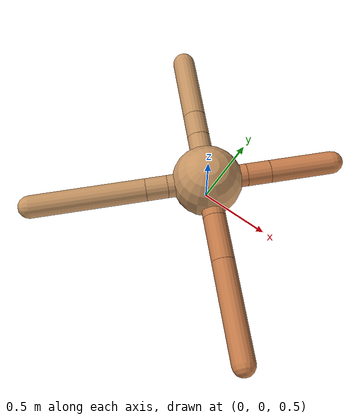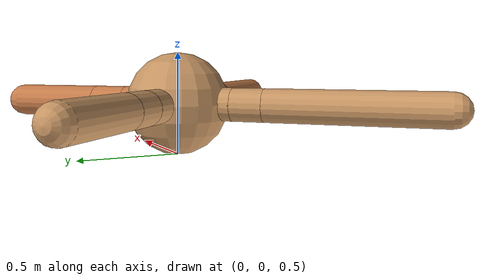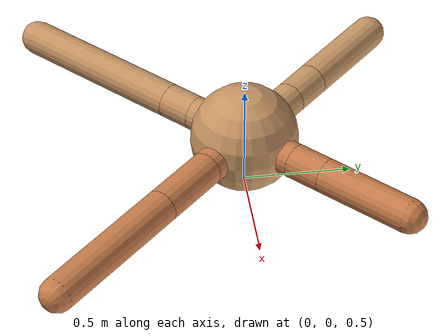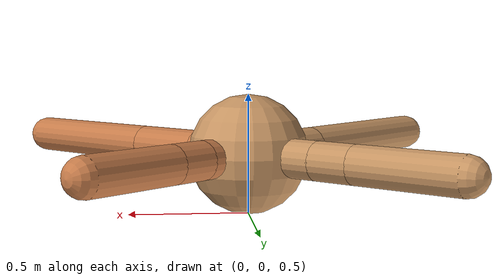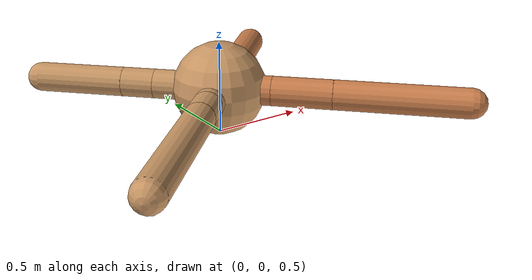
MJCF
<mujoco model="ant">
  <compiler angle="degree" coordinate="local" inertiafromgeom="true" />
  <option integrator="RK4" timestep="0.01" />
  <custom>
    <numeric data="0.0 0.0 0.55 1.0 0.0 0.0 0.0 0.0 1.0 0.0 -1.0 0.0 -1.0 0.0 1.0" name="init_qpos" />
  </custom>
  <default>
    <joint armature="1" damping="1" limited="true" />
    <geom conaffinity="0" condim="3" density="5.0" friction="1.5 0.1 0.1" margin="0.01" rgba="0.8 0.6 0.4 1" />
  </default>
  <worldbody>
    <body name="torso" pos="0 0 0.75">
      <geom name="torso_geom" pos="0 0 0" size="0.25" type="sphere" />

      <body name="front_left_leg" pos="0 0 0">
        <geom fromto="0.0 0.0 0.0 0.2 0.2 0.0" name="aux_1_geom" size="0.08" type="capsule" rgba=".8 .5 .3 1" />
        <body name="aux_1" pos="0.2 0.2 0.0">
          <joint axis="0 0 1" name="hip_1" pos="0.0 0.0 0.0" range="-40 40" type="hinge" />
          <geom fromto="0.0 0.0 0.0 0.11872063635109326 0.11872063635109326 0.0" name="left_leg_geom" size="0.08" type="capsule" rgba=".8 .5 .3 1" />
          <body pos="0.11872063635109326 0.11872063635109326 0.0" name="front_left_foot">
            <joint axis="-1 1 0" name="ankle_1" pos="0.0 0.0 0.0" range="30 100" type="hinge" />
            <geom fromto="0.0 0.0 0.0 0.31599545304244936 0.31599545304244936 0.0" name="left_ankle_geom" size="0.08" type="capsule" rgba=".8 .5 .3 1" />
          </body>
        </body>
      </body>
      <body name="front_right_leg" pos="0 0 0">
        <geom fromto="0.0 0.0 0.0 -0.25078593306653035 0.25078593306653035 0.0" name="aux_2_geom" size="0.08" type="capsule" />
        <body name="aux_2" pos="-0.25078593306653035 0.25078593306653035 0.0">
          <joint axis="0 0 1" name="hip_2" pos="0.0 0.0 0.0" range="-40 40" type="hinge" />
          <geom fromto="0.0 0.0 0.0 -0.12448399848472058 0.12448399848472058 0.0" name="right_leg_geom" size="0.08" type="capsule" />
          <body pos="-0.12448399848472058 0.12448399848472058 0.0" name="front_right_foot">
            <joint axis="1 1 0" name="ankle_2" pos="0.0 0.0 0.0" range="-100 -30" type="hinge" />
            <geom fromto="0.0 0.0 0.0 -0.3344903902671939 0.3344903902671939 0.0" name="right_ankle_geom" size="0.08" type="capsule" />
          </body>
        </body>
      </body>
      <body name="left_back_leg" pos="0 0 0">
        <geom fromto="0.0 0.0 0.0 -0.2 -0.2 0.0" name="aux_3_geom" size="0.08" type="capsule" />
        <body name="aux_3" pos="-0.2 -0.2 0.0">
          <joint axis="0 0 1" name="hip_3" pos="0.0 0.0 0.0" range="-40 40" type="hinge" />
          <geom fromto="0.0 0.0 0.0 -0.10842557694703941 -0.10842557694703941 0.0" name="back_leg_geom" size="0.08" type="capsule" />
          <body pos="-0.10842557694703941 -0.10842557694703941 0.0" name="left_back_foot">
            <joint axis="-1 1 0" name="ankle_3" pos="0.0 0.0 0.0" range="-100 -30" type="hinge" />
            <geom fromto="0.0 0.0 0.0 -0.5752306759970236 -0.5752306759970236 0.0" name="third_ankle_geom" size="0.08" type="capsule" />
          </body>
        </body>
      </body>
      <body name="right_back_leg" pos="0 0 0">
        <geom fromto="0.0 0.0 0.0 0.2 -0.2 0.0" name="aux_4_geom" size="0.08" type="capsule" rgba=".8 .5 .3 1" />
        <body name="aux_4" pos="0.2 -0.2 0.0">
          <joint axis="0 0 1" name="hip_4" pos="0.0 0.0 0.0" range="-40 40" type="hinge" />
          <geom fromto="0.0 0.0 0.0 0.2278172275423986 -0.2278172275423986 0.0" name="rightback_leg_geom" size="0.08" type="capsule" rgba=".8 .5 .3 1" />
          <body pos="0.2278172275423986 -0.2278172275423986 0.0" name="right_back_foot">
            <joint axis="1 1 0" name="ankle_4" pos="0.0 0.0 0.0" range="30 100" type="hinge" />
            <geom fromto="0.0 0.0 0.0 0.4930054909509936 -0.4930054909509936 0.0" name="fourth_ankle_geom" size="0.08" type="capsule" rgba=".8 .5 .3 1" />
          </body>
        </body>
      </body>
    </body>
  </worldbody>
  <actuator>
    <motor ctrllimited="true" ctrlrange="-1.0 1.0" joint="hip_4" gear="150" />
    <motor ctrllimited="true" ctrlrange="-1.0 1.0" joint="ankle_4" gear="150" />
    <motor ctrllimited="true" ctrlrange="-1.0 1.0" joint="hip_1" gear="150" />
    <motor ctrllimited="true" ctrlrange="-1.0 1.0" joint="ankle_1" gear="150" />
    <motor ctrllimited="true" ctrlrange="-1.0 1.0" joint="hip_2" gear="150" />
    <motor ctrllimited="true" ctrlrange="-1.0 1.0" joint="ankle_2" gear="150" />
    <motor ctrllimited="true" ctrlrange="-1.0 1.0" joint="hip_3" gear="150" />
    <motor ctrllimited="true" ctrlrange="-1.0 1.0" joint="ankle_3" gear="150" />
  </actuator>
</mujoco>
